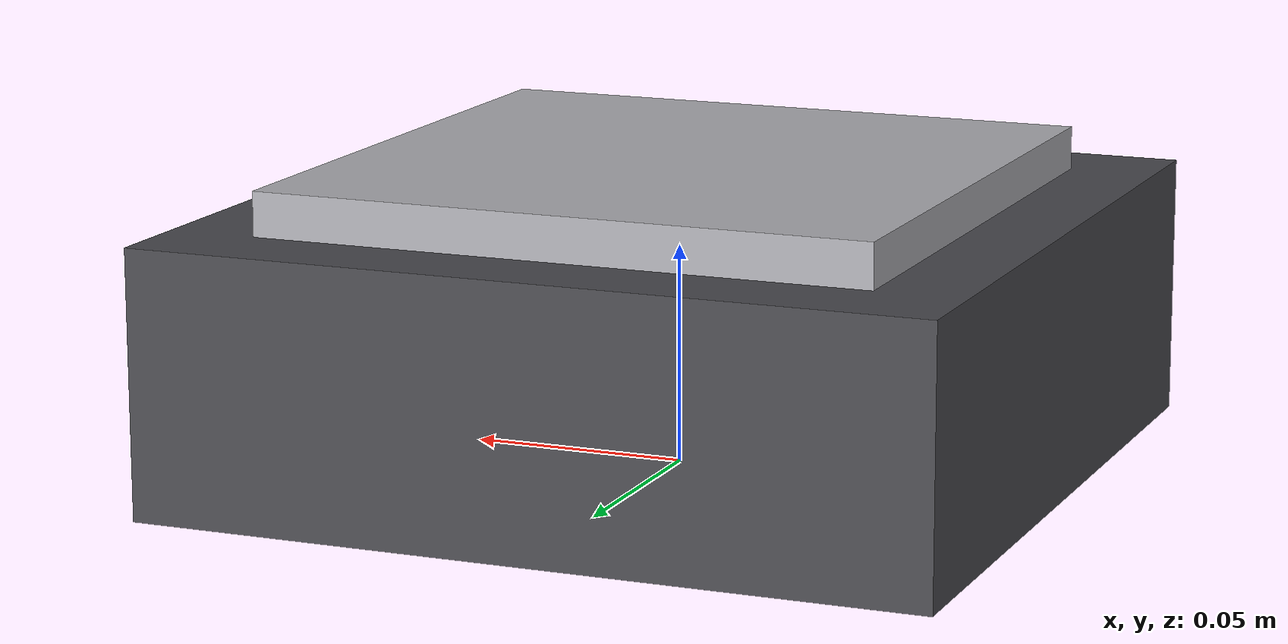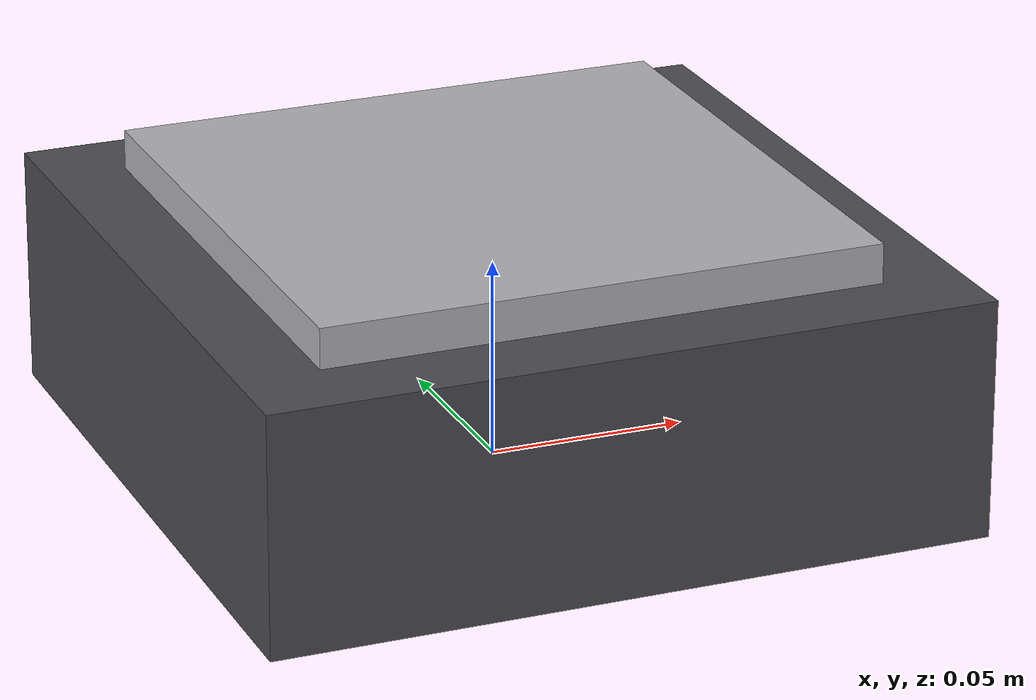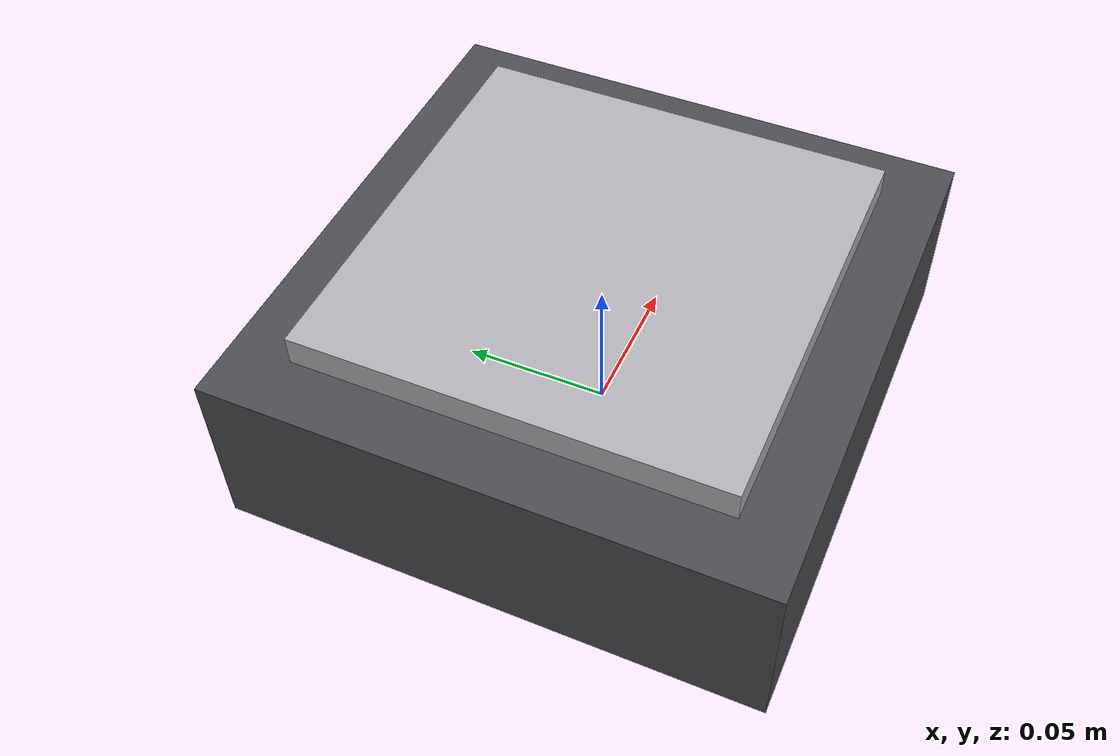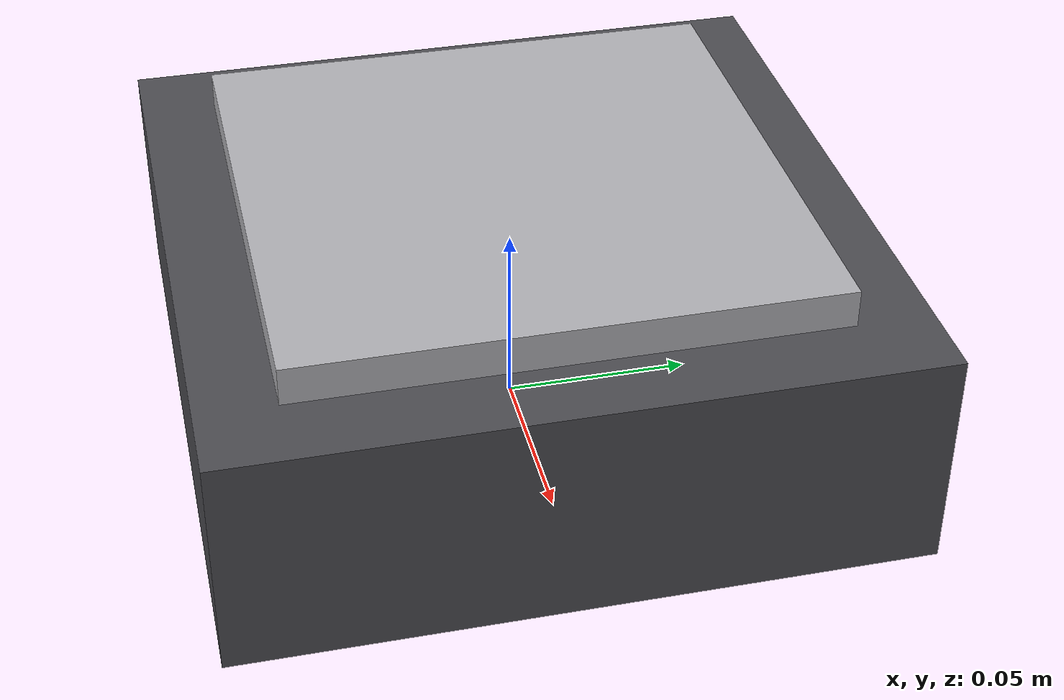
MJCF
<?xml version="1.0" encoding="utf-8"?>
<mujoco model="vibration_test_shaker">
  <compiler angle="radian" autolimits="true"/>
  <default>
    <default class="body"><geom contype="1" conaffinity="1"/></default>
  </default>
  <worldbody>
    <body name="base">
      <geom type="box" size="0.09 0.09 0.03" pos="0 0 0.03" rgba="0.3 0.3 0.32 1" class="body"/>
      <body name="shake_table" pos="0 0 0.065">
        <joint name="shake_table_joint" type="hinge" axis="1 0 0" range="-0.12 0.12" damping="0.8" frictionloss="0.3"/>
  <geom type="box" size="0.07 0.07 0.005" pos="0 0 0" rgba="0.7 0.7 0.72 1" class="body"/>
      </body>
    </body>
  </worldbody>
</mujoco>
